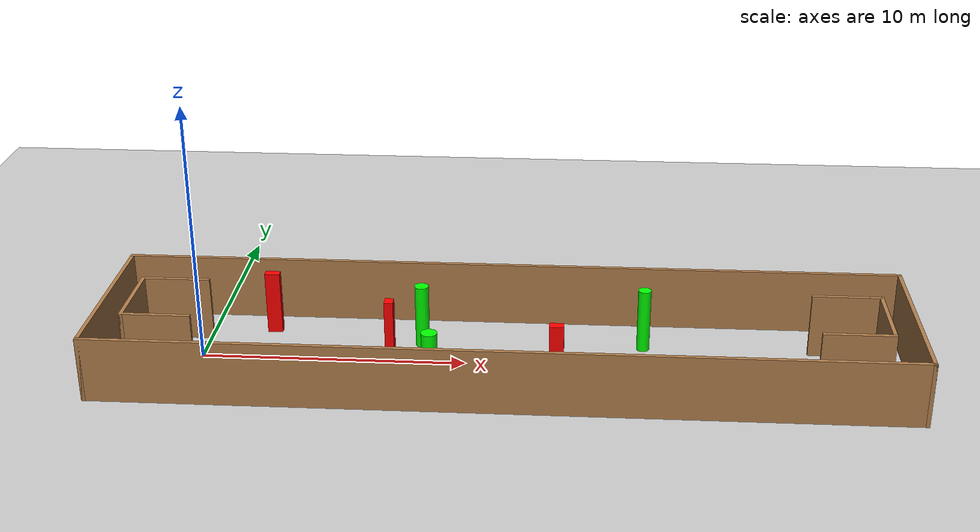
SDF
<sdf version="1.7">
 <world name="default">
  <light name="sun" type="directional">
   <pose>0 0 10 0 -0 0</pose>
   <diffuse>0.8 0.8 0.8 1</diffuse>
   <specular>0.2 0.2 0.2 1</specular>
   <attenuation>
    <range>1000</range>
    <constant>0.9</constant>
    <linear>0.01</linear>
    <quadratic>0.001</quadratic>
   </attenuation>
   <direction>-0.5 0.1 -0.9</direction>
   <spot><inner_angle>0</inner_angle><outer_angle>0</outer_angle><falloff>0</falloff></spot>
  </light>
  <model name="ground_plane">
   <static>1</static>
   <link name="link">
    <collision name="collision">
     <geometry><plane><normal>0 0 1</normal><size>100 100</size></plane></geometry>
     <surface>
      <contact><collide_bitmask>65535</collide_bitmask></contact>
      <friction><ode><mu>100</mu><mu2>50</mu2></ode></friction>
     </surface>
    </collision>
    <visual name="visual">
     <cast_shadows>0</cast_shadows>
     <geometry><plane><normal>0 0 1</normal><size>100 100</size></plane></geometry>
     <material>
      <script><uri>file://media/materials/scripts/gazebo.material</uri><name>Gazebo/Grey</name></script>
     </material>
    </visual>
   </link>
  </model>
  <gravity>0 0 -9.8</gravity>
  <magnetic_field>6e-06 2.3e-05 -4.2e-05</magnetic_field>
  <atmosphere type="adiabatic"/>
  <physics type="ode">
   <max_step_size>0.001</max_step_size>
   <real_time_factor>1</real_time_factor>
   <real_time_update_rate>1000</real_time_update_rate>
  </physics>
  <scene><ambient>0.4 0.4 0.4 1</ambient><background>0.7 0.7 0.7 1</background><shadows>1</shadows></scene>
  <spherical_coordinates>
   <surface_model>EARTH_WGS84</surface_model>
   <latitude_deg>0</latitude_deg>
   <longitude_deg>0</longitude_deg>
   <elevation>0</elevation>
   <heading_deg>0</heading_deg>
  </spherical_coordinates>
  <model name="my_base_walls">
   <link name="Wall_0">
    <collision name="Wall_0_Collision">
     <geometry><box><size>7.15 0.15 2.5</size></box></geometry>
     <pose>0 0 1.25 0 -0 0</pose>
    </collision>
    <visual name="Wall_0_Visual">
     <pose>0 0 1.25 0 -0 0</pose>
     <geometry><box><size>7.15 0.15 2.5</size></box></geometry>
     <material>
      <script><uri>file://media/materials/scripts/gazebo.material</uri><name>Gazebo/Wood</name></script>
      <ambient>1 1 1 1</ambient>
     </material>
     <meta><layer>0</layer></meta>
    </visual>
    <pose>-15 0 0 0 -0 1.5708</pose>
   </link>
   <link name="Wall_10">
    <collision name="Wall_10_Collision">
     <geometry><box><size>2.65 0.15 2.5</size></box></geometry>
     <pose>0 0 1.25 0 -0 0</pose>
    </collision>
    <visual name="Wall_10_Visual">
     <pose>0 0 1.25 0 -0 0</pose>
     <geometry><box><size>2.65 0.15 2.5</size></box></geometry>
     <material>
      <script><uri>file://media/materials/scripts/gazebo.material</uri><name>Gazebo/Wood</name></script>
      <ambient>1 1 1 1</ambient>
     </material>
     <meta><layer>0</layer></meta>
    </visual>
    <pose>-12.75 -1.5 0 0 -0 0</pose>
   </link>
   <link name="Wall_12">
    <collision name="Wall_12_Collision">
     <geometry><box><size>2.65 0.15 2.5</size></box></geometry>
     <pose>0 0 1.25 0 -0 0</pose>
    </collision>
    <visual name="Wall_12_Visual">
     <pose>0 0 1.25 0 -0 0</pose>
     <geometry><box><size>2.65 0.15 2.5</size></box></geometry>
     <material>
      <script><uri>file://media/materials/scripts/gazebo.material</uri><name>Gazebo/Wood</name></script>
      <ambient>1 1 1 1</ambient>
     </material>
     <meta><layer>0</layer></meta>
    </visual>
    <pose>-12.75 1.5 0 0 -0 0</pose>
   </link>
   <link name="Wall_14">
    <collision name="Wall_14_Collision">
     <geometry><box><size>3.15 0.15 2.5</size></box></geometry>
     <pose>0 0 1.25 0 -0 0</pose>
    </collision>
    <visual name="Wall_14_Visual">
     <pose>0 0 1.25 0 -0 0</pose>
     <geometry><box><size>3.15 0.15 2.5</size></box></geometry>
     <material>
      <script><uri>file://media/materials/scripts/gazebo.material</uri><name>Gazebo/Wood</name></script>
      <ambient>1 1 1 1</ambient>
     </material>
     <meta><layer>0</layer></meta>
    </visual>
    <pose>14 0 0 0 -0 -1.5708</pose>
   </link>
   <link name="Wall_15">
    <collision name="Wall_15_Collision">
     <geometry><box><size>2.65 0.15 2.5</size></box></geometry>
     <pose>0 0 1.25 0 -0 0</pose>
    </collision>
    <visual name="Wall_15_Visual">
     <pose>0 0 1.25 0 -0 0</pose>
     <geometry><box><size>2.65 0.15 2.5</size></box></geometry>
     <material>
      <script><uri>file://media/materials/scripts/gazebo.material</uri><name>Gazebo/Wood</name></script>
      <ambient>1 1 1 1</ambient>
     </material>
     <meta><layer>0</layer></meta>
    </visual>
    <pose>12.75 -1.5 0 0 -0 3.14159</pose>
   </link>
   <link name="Wall_17">
    <collision name="Wall_17_Collision">
     <geometry><box><size>2.65 0.15 2.5</size></box></geometry>
     <pose>0 0 1.25 0 -0 0</pose>
    </collision>
    <visual name="Wall_17_Visual">
     <pose>0 0 1.25 0 -0 0</pose>
     <geometry><box><size>2.65 0.15 2.5</size></box></geometry>
     <material>
      <script><uri>file://media/materials/scripts/gazebo.material</uri><name>Gazebo/Wood</name></script>
      <ambient>1 1 1 1</ambient>
     </material>
     <meta><layer>0</layer></meta>
    </visual>
    <pose>12.75 1.5 0 0 -0 3.14159</pose>
   </link>
   <link name="Wall_2">
    <collision name="Wall_2_Collision">
     <geometry><box><size>30.15 0.15 2.5</size></box></geometry>
     <pose>0 0 1.25 0 -0 0</pose>
    </collision>
    <visual name="Wall_2_Visual">
     <pose>0 0 1.25 0 -0 0</pose>
     <geometry><box><size>30.15 0.15 2.5</size></box></geometry>
     <material>
      <script><uri>file://media/materials/scripts/gazebo.material</uri><name>Gazebo/Wood</name></script>
      <ambient>1 1 1 1</ambient>
     </material>
     <meta><layer>0</layer></meta>
    </visual>
    <pose>-0 -3.5 0 0 -0 0</pose>
   </link>
   <link name="Wall_4">
    <collision name="Wall_4_Collision">
     <geometry><box><size>30.15 0.15 2.5</size></box></geometry>
     <pose>0 0 1.25 0 -0 0</pose>
    </collision>
    <visual name="Wall_4_Visual">
     <pose>0 0 1.25 0 -0 0</pose>
     <geometry><box><size>30.15 0.15 2.5</size></box></geometry>
     <material>
      <script><uri>file://media/materials/scripts/gazebo.material</uri><name>Gazebo/Wood</name></script>
      <ambient>1 1 1 1</ambient>
     </material>
     <meta><layer>0</layer></meta>
    </visual>
    <pose>-0 3.5 0 0 -0 0</pose>
   </link>
   <link name="Wall_6">
    <collision name="Wall_6_Collision">
     <geometry><box><size>7.15 0.15 2.5</size></box></geometry>
     <pose>0 0 1.25 0 -0 0</pose>
    </collision>
    <visual name="Wall_6_Visual">
     <pose>0 0 1.25 0 -0 0</pose>
     <geometry><box><size>7.15 0.15 2.5</size></box></geometry>
     <material>
      <script><uri>file://media/materials/scripts/gazebo.material</uri><name>Gazebo/Wood</name></script>
      <ambient>1 1 1 1</ambient>
     </material>
     <meta><layer>0</layer></meta>
    </visual>
    <pose>15 0 0 0 -0 -1.5708</pose>
   </link>
   <link name="Wall_9">
    <collision name="Wall_9_Collision">
     <geometry><box><size>3.15 0.15 2.5</size></box></geometry>
     <pose>0 0 1.25 0 -0 0</pose>
    </collision>
    <visual name="Wall_9_Visual">
     <pose>0 0 1.25 0 -0 0</pose>
     <geometry><box><size>3.15 0.15 2.5</size></box></geometry>
     <material>
      <script><uri>file://media/materials/scripts/gazebo.material</uri><name>Gazebo/Wood</name></script>
      <ambient>1 1 1 1</ambient>
     </material>
     <meta><layer>0</layer></meta>
    </visual>
    <pose>-14 0 0 0 -0 -1.5708</pose>
   </link>
   <static>1</static>
   <pose>11.5 0 0 0 -0 0</pose>
  </model>
  <model name="cylinder1">
   <static>1</static>
   <link name="link">
    <inertial>
     <mass>1</mass>
     <inertia><ixx>0.5</ixx><ixy>0</ixy><ixz>0</ixz><iyy>0.5</iyy><iyz>0</iyz><izz>1</izz></inertia>
    </inertial>
    <collision name="collision">
     <geometry><cylinder><radius>0.29786098685819007</radius><length>2.5</length></cylinder></geometry>
    </collision>
    <visual name="visual">
     <geometry><cylinder><radius>0.29786098685819007</radius><length>2.5</length></cylinder></geometry>
     <material>
      <ambient>0 1 0 1</ambient>
      <diffuse>0 1 0 1</diffuse>
      <specular>0.1 0.1 0.1 1</specular>
      <emissive>0 0 0 0</emissive>
     </material>
    </visual>
   </link>
   <pose>8.91939025576301 -2.3079187677588884 1.25 0 0 0</pose>
  </model>
  <model name="cylinder2">
   <static>1</static>
   <link name="link">
    <inertial>
     <mass>1</mass>
     <inertia><ixx>0.5</ixx><ixy>0</ixy><ixz>0</ixz><iyy>0.5</iyy><iyz>0</iyz><izz>1</izz></inertia>
    </inertial>
    <collision name="collision">
     <geometry><cylinder><radius>0.2432544945510463</radius><length>2.5</length></cylinder></geometry>
    </collision>
    <visual name="visual">
     <geometry><cylinder><radius>0.2432544945510463</radius><length>2.5</length></cylinder></geometry>
     <material>
      <ambient>0 1 0 1</ambient>
      <diffuse>0 1 0 1</diffuse>
      <specular>0.1 0.1 0.1 1</specular>
      <emissive>0 0 0 0</emissive>
     </material>
    </visual>
   </link>
   <pose>16.68958896306009 1.5696846236087278 1.25 0 0 0</pose>
  </model>
  <model name="cylinder3">
   <static>1</static>
   <link name="link">
    <inertial>
     <mass>1</mass>
     <inertia><ixx>0.5</ixx><ixy>0</ixy><ixz>0</ixz><iyy>0.5</iyy><iyz>0</iyz><izz>1</izz></inertia>
    </inertial>
    <collision name="collision">
     <geometry><cylinder><radius>0.2655522124014066</radius><length>2.5</length></cylinder></geometry>
    </collision>
    <visual name="visual">
     <geometry><cylinder><radius>0.2655522124014066</radius><length>2.5</length></cylinder></geometry>
     <material>
      <ambient>0 1 0 1</ambient>
      <diffuse>0 1 0 1</diffuse>
      <specular>0.1 0.1 0.1 1</specular>
      <emissive>0 0 0 0</emissive>
     </material>
    </visual>
   </link>
   <pose>8.23698332014875 1.4232476260497595 1.25 0 0 0</pose>
  </model>
  <model name="box1">
   <static>1</static>
   <link name="link">
    <inertial>
     <mass>1</mass>
     <inertia><ixx>0.083</ixx><ixy>0</ixy><ixz>0</ixz><iyy>0.083</iyy><iyz>0</iyz><izz>0.083</izz></inertia>
    </inertial>
    <collision name="collision">
     <geometry><box><size>0.33818098732718765 0.4364876188905004 2.5</size></box></geometry>
    </collision>
    <visual name="visual">
     <geometry><box><size>0.33818098732718765 0.4364876188905004 2.5</size></box></geometry>
     <material>
      <ambient>1 0 0 1</ambient>
      <diffuse>1 0 0 1</diffuse>
      <specular>0.1 0.1 0.1 1</specular>
      <emissive>0 0 0 0</emissive>
     </material>
    </visual>
    <sensor name="my_contact" type="contact">
     <contact><collision>box_collision</collision><topic>__default_topic__</topic></contact>
    </sensor>
   </link>
   <pose>7.159671194096346 0.10238711311535198 1.25 0 0 0</pose>
  </model>
  <model name="box2">
   <static>1</static>
   <link name="link">
    <inertial>
     <mass>1</mass>
     <inertia><ixx>0.083</ixx><ixy>0</ixy><ixz>0</ixz><iyy>0.083</iyy><iyz>0</iyz><izz>0.083</izz></inertia>
    </inertial>
    <collision name="collision">
     <geometry><box><size>0.5344487778534504 0.35286930877971656 2.5</size></box></geometry>
    </collision>
    <visual name="visual">
     <geometry><box><size>0.5344487778534504 0.35286930877971656 2.5</size></box></geometry>
     <material>
      <ambient>1 0 0 1</ambient>
      <diffuse>1 0 0 1</diffuse>
      <specular>0.1 0.1 0.1 1</specular>
      <emissive>0 0 0 0</emissive>
     </material>
    </visual>
    <sensor name="my_contact" type="contact">
     <contact><collision>box_collision</collision><topic>__default_topic__</topic></contact>
    </sensor>
   </link>
   <pose>13.453809721167625 -1.4569487990755596 1.25 0 0 0</pose>
  </model>
  <model name="box3">
   <static>1</static>
   <link name="link">
    <inertial>
     <mass>1</mass>
     <inertia><ixx>0.083</ixx><ixy>0</ixy><ixz>0</ixz><iyy>0.083</iyy><iyz>0</iyz><izz>0.083</izz></inertia>
    </inertial>
    <collision name="collision">
     <geometry><box><size>0.5731251892772717 0.2968916368385704 2.5</size></box></geometry>
    </collision>
    <visual name="visual">
     <geometry><box><size>0.5731251892772717 0.2968916368385704 2.5</size></box></geometry>
     <material>
      <ambient>1 0 0 1</ambient>
      <diffuse>1 0 0 1</diffuse>
      <specular>0.1 0.1 0.1 1</specular>
      <emissive>0 0 0 0</emissive>
     </material>
    </visual>
    <sensor name="my_contact" type="contact">
     <contact><collision>box_collision</collision><topic>__default_topic__</topic></contact>
    </sensor>
   </link>
   <pose>2.358717802222639 2.2250557047014867 1.25 0 0 0</pose>
  </model>
 </world>
</sdf>
